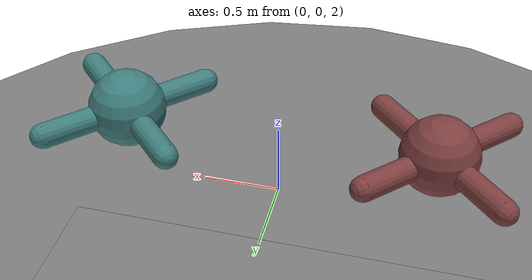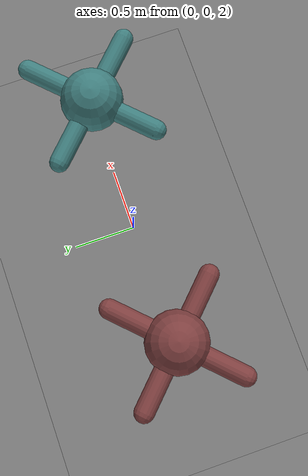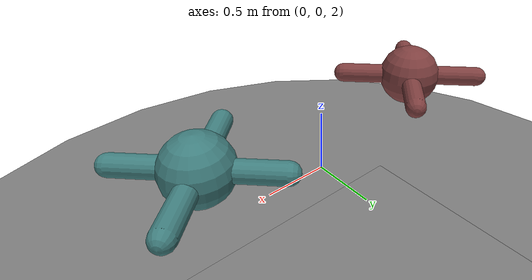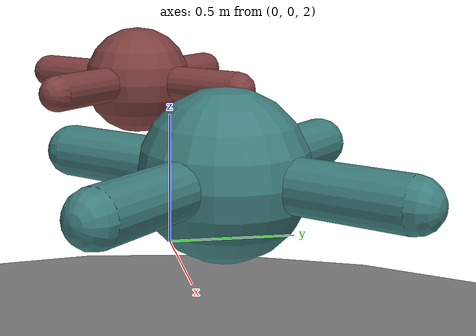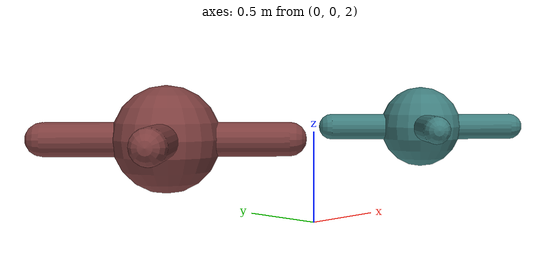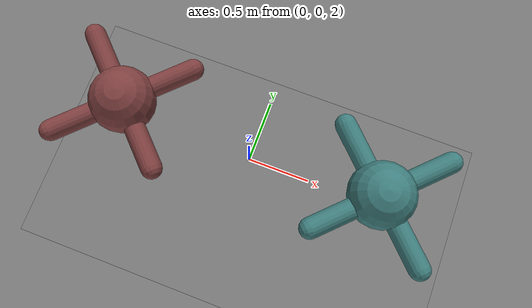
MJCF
<mujoco model="mutiagent_world">
  <compiler angle="degree" coordinate="local" inertiafromgeom="true" />
  <option integrator="RK4" timestep="0.01" />
  <default>
    <joint armature="1" damping="1" limited="true" />
  <default class="agent0"><joint armature="1" damping="1" limited="true" />
    <geom conaffinity="1" condim="3" density="5.0" friction="1 0.5 0.5" margin="0.01" rgba="0.5 0.25 0.25 1" />
    <motor ctrllimited="true" ctrlrange="-.4 .4" />
  </default><default class="agent1"><joint armature="1" damping="1" limited="true" />
    <geom conaffinity="1" condim="3" density="5.0" friction="1 0.5 0.5" margin="0.01" rgba="0.25 0.5 0.5 1" />
    <motor ctrllimited="true" ctrlrange="-.4 .4" />
  </default></default>
  <asset>
    <texture builtin="gradient" height="100" rgb1="1 1 1" rgb2="0 0 0" type="skybox" width="100" />
    <texture builtin="flat" height="1278" mark="cross" markrgb="1 1 1" name="texgeom" random="0.01" rgb1="1 1 1" rgb2="0.8 0.6 0.4" type="cube" width="127" />
    <texture builtin="checker" height="100" name="texplane" rgb1="0.1 0.1 0.1" rgb2="0.1 0.1 0.1" type="2d" width="100" markrgb="0.2 0.2 0.2" mark="edge" />
    <material name="MatPlane" reflectance="0.5" shininess="1" specular="1" texrepeat="60 60" texture="texplane" />
    <material name="geom" texture="texgeom" texuniform="true" />
  </asset>
  <worldbody>
    <light cutoff="100" diffuse="1 1 1" dir="-0 0 -1.3" directional="true" exponent="1" pos="0 0 1.3" specular=".1 .1 .1" />
    <geom contype="1" conaffinity="1" friction="1 .1 .1" condim="3" material="MatPlane" name="floor" pos="0 0 0" rgba="1 1 1 1" size="20 20 0.125" type="plane" />
    <geom fromto="4 -5 0  4 +5 0" name="rightgoal" rgba="0.6 0.0 0.0 0" size=".03" type="cylinder" />
    <geom fromto="-4 -5 0  -4 +5 0" name="leftgoal" rgba="0.6 0.0 0.0 0" size=".03" type="cylinder" />
    <geom conaffinity="0xffffffff" condim="3" contype="1" friction="1 .1 .1" name="arena" size="4.5 .25" type="cylinder" pos="0 0 0.25" rgba="0.4 0.4 0.4 0.8" />
  <body name="agent0/torso" pos="-1 0 2.5" euler="0 0 180">
    <geom name="agent0/torso_geom" pos="0 0 0" size="0.25" type="sphere" class="agent0" />
    <joint armature="0" damping="0" limited="false" margin="0.01" name="agent0/root" pos="0 0 0" range="-30 30" type="free" />
    <body name="agent0/1" pos="0 0 0">
        <geom fromto="0.0 0.0 0.0 0.4 0.4 0.0" name="agent0/aux_1_geom" size="0.08" type="capsule" class="agent0" />
        <joint axis="-1 1 0" name="agent0/1_joint" pos="0.0 0.0 0.0" range="-30 30" type="hinge" />
    </body>
    <body name="agent0/2" pos="0 0 0">
        <geom fromto="0.0 0.0 0.0 -0.4 0.4 0.0" name="agent0/aux_2_geom" size="0.08" type="capsule" class="agent0" />
        <joint axis="-1 -1 0" name="agent0/2_joint" pos="0.0 0.0 0.0" range="-30 30" type="hinge" />
    </body>
    <body name="agent0/3" pos="0 0 0">
        <geom fromto="0.0 0.0 0.0 -0.4 -0.4 0.0" name="agent0/aux_3_geom" size="0.08" type="capsule" class="agent0" />
        <joint axis="1 -1 0" name="agent0/3_joint" pos="0.0 0.0 0.0" range="-30 30" type="hinge" />
    </body>
    <body name="agent0/4" pos="0 0 0">
        <geom fromto="0.0 0.0 0.0 0.4 -0.4 0.0" name="agent0/aux_4_geom" size="0.08" type="capsule" class="agent0" />
        <joint axis="1 1 0" name="agent0/4_joint" pos="0.0 0.0 0.0" range="-30 30" type="hinge" />
    </body>
  </body>

  <body name="agent1/torso" pos="1 0 2.5" euler="0 0 180">
    <geom name="agent1/torso_geom" pos="0 0 0" size="0.25" type="sphere" class="agent1" />
    <joint armature="0" damping="0" limited="false" margin="0.01" name="agent1/root" pos="0 0 0" range="-30 30" type="free" />
    <body name="agent1/1" pos="0 0 0">
        <geom fromto="0.0 0.0 0.0 0.4 0.4 0.0" name="agent1/aux_1_geom" size="0.08" type="capsule" class="agent1" />
        <joint axis="-1 1 0" name="agent1/1_joint" pos="0.0 0.0 0.0" range="-30 30" type="hinge" />
    </body>
    <body name="agent1/2" pos="0 0 0">
        <geom fromto="0.0 0.0 0.0 -0.4 0.4 0.0" name="agent1/aux_2_geom" size="0.08" type="capsule" class="agent1" />
        <joint axis="-1 -1 0" name="agent1/2_joint" pos="0.0 0.0 0.0" range="-30 30" type="hinge" />
    </body>
    <body name="agent1/3" pos="0 0 0">
        <geom fromto="0.0 0.0 0.0 -0.4 -0.4 0.0" name="agent1/aux_3_geom" size="0.08" type="capsule" class="agent1" />
        <joint axis="1 -1 0" name="agent1/3_joint" pos="0.0 0.0 0.0" range="-30 30" type="hinge" />
    </body>
    <body name="agent1/4" pos="0 0 0">
        <geom fromto="0.0 0.0 0.0 0.4 -0.4 0.0" name="agent1/aux_4_geom" size="0.08" type="capsule" class="agent1" />
        <joint axis="1 1 0" name="agent1/4_joint" pos="0.0 0.0 0.0" range="-30 30" type="hinge" />
    </body>
  </body>

  </worldbody>
<actuator>
    <motor ctrllimited="true" ctrlrange="-1.0 1.0" joint="agent0/1_joint" gear="150" name="agent0/1_joint" class="agent0" />
    <motor ctrllimited="true" ctrlrange="-1.0 1.0" joint="agent0/2_joint" gear="150" name="agent0/2_joint" class="agent0" />
    <motor ctrllimited="true" ctrlrange="-1.0 1.0" joint="agent0/3_joint" gear="150" name="agent0/3_joint" class="agent0" />
    <motor ctrllimited="true" ctrlrange="-1.0 1.0" joint="agent0/4_joint" gear="150" name="agent0/4_joint" class="agent0" />
  <motor ctrllimited="true" ctrlrange="-1.0 1.0" joint="agent1/1_joint" gear="150" name="agent1/1_joint" class="agent1" />
    <motor ctrllimited="true" ctrlrange="-1.0 1.0" joint="agent1/2_joint" gear="150" name="agent1/2_joint" class="agent1" />
    <motor ctrllimited="true" ctrlrange="-1.0 1.0" joint="agent1/3_joint" gear="150" name="agent1/3_joint" class="agent1" />
    <motor ctrllimited="true" ctrlrange="-1.0 1.0" joint="agent1/4_joint" gear="150" name="agent1/4_joint" class="agent1" />
  </actuator>

</mujoco>
